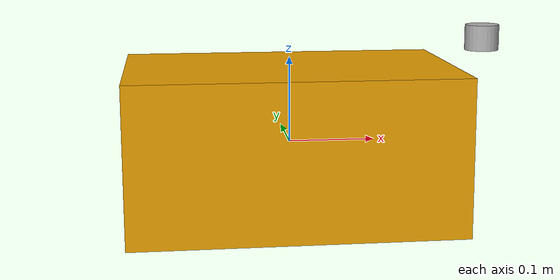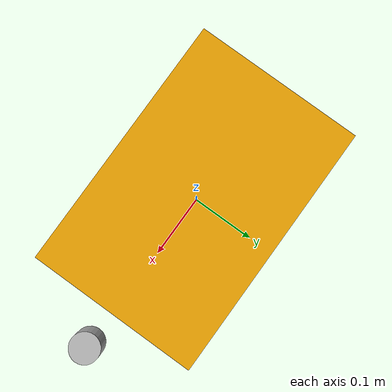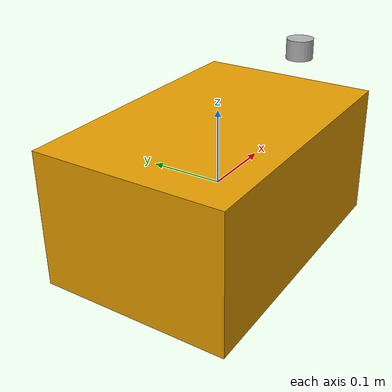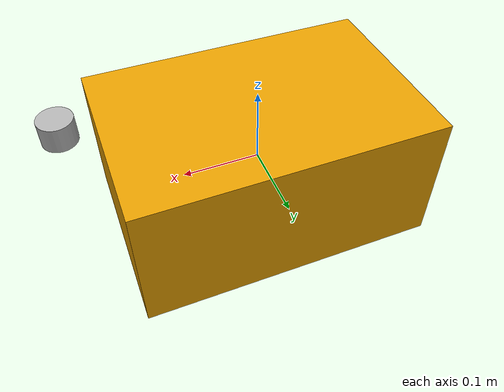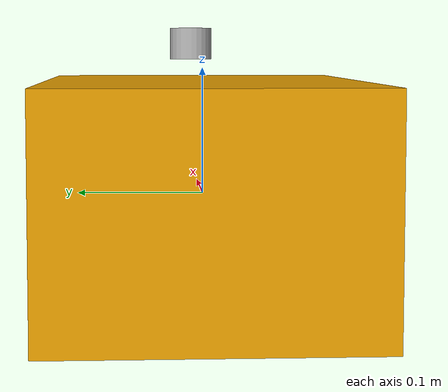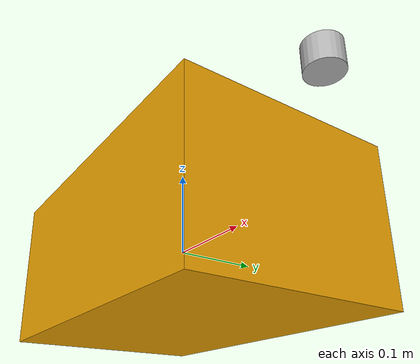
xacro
<?xml version="1.0"?>

<robot name="autocar_wl_v1"
        xmlns:xacro="http://ros.org/wiki/xacro">

        <xacro:include filename="$(find autocar_description)/urdf/wl_rccar_v1.xacro" />

        <link name="laser_link">
                <visual>
                        <origin xyz="0.0 0.0 0.0" />
                        <geometry>
                                <cylinder length="0.03" radius="0.02" />
                        </geometry>
                </visual>
        </link>

        <joint name="base_laser_joint" type="fixed">
                <parent link="base_link" />
                <child link="laser_link" />
                <origin xyz="0.23 0.0 0.12" rpy="0 0 0" />
        </joint>

</robot>

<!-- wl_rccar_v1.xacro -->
<robot name="autocar_wl_v1"
        xmlns:xacro="http://ros.org/wiki/xacro">

        <xacro:arg name="robot_namespace" default="/" />

        <!-- Variables -->
        <xacro:property name="M_PI" value="3.14159"/>

        <!-- Vehicle Geometries -->
        <xacro:property name="base_x_size" value="0.38" />
        <xacro:property name="base_y_size" value="0.25" />
        <xacro:property name="base_z_size" value="0.18" />

        <xacro:property name="wheelbase" value="0.29" />
        <xacro:property name="track" value="0.21" />
        <xacro:property name="wheel_vertical_offset" value="-0.0702" />

        <xacro:property name="wheel_length" value="0.04" />
        <xacro:property name="wheel_radius" value="0.04" />

        <!-- Base link -->
        <link name="base_link">
                <visual>
                        <origin xyz="0 0 0" rpy="0 0 0" />
                        <geometry>
                                <box size="${base_x_size} ${base_y_size} ${base_z_size}" />
                        </geometry>
                </visual>
                <collision>
                        <origin xyz="0 0 0.008" rpy="0 0 0" />
                        <geometry>
                                <box size="${base_x_size} ${base_y_size} ${base_z_size}"/>
                        </geometry>
                </collision>
        </link>

        <link name="base_footprint"/>

        <joint name="base_footprint_joint" type="fixed">
                <origin xyz="0 0 ${wheel_vertical_offset - wheel_radius}" rpy="0 0 0" />
                <parent link="base_link" />
                <child link="base_footprint" />
        </joint>

        <link name="inertial_link">
                <inertial>
                        <mass value="40" />
                        <origin xyz="0.0 0.0 0.0" />
                        <inertia ixx="2.288641" ixy="0" ixz="0" iyy="5.103976" iyz="0" izz="3.431465" />
                </inertial>
        </link>

        <joint name="inertial_joint" type="fixed">
                <origin xyz="0 0 0" rpy="0 0 0" />
                <parent link="base_link" />
                <child link="inertial_link" />
        </joint>

        <!-- Wheels -->
        <xacro:macro name="wl_wheel" params="wheel_prefix *joint_pose">
                <link name="${wheel_prefix}_wheel_link">
                        <inertial>
                                <mass value="3" />
                                <origin xyz="0 0 0" />
                                <inertia ixx="0.7171" ixy="0" ixz="0" iyy="0.1361" iyz="0" izz="0.7171" />
                        </inertial>
                        <visual>
                                <origin xyz="0 0 0" rpy="0 0 0" />
                                <geometry>
                                        <cylinder length="${wheel_length}" radius="${wheel_radius}" />
                                </geometry>
                        </visual>
                        <collision>
                                <origin xyz="0 0 0" rpy="${M_PI/2} 0 0" />
                                <geometry>
                                        <cylinder length="${wheel_length}" radius="${wheel_radius}" />
                                </geometry>
                        </collision>
                </link>

                <joint name="${wheel_prefix}_wheel_joint" type="continuous">
                        <parent link="base_link"/>
                        <child link="${wheel_prefix}_wheel_link"/>
                        <axis xyz="0 -1 0" rpy="0 0 0" />
                        <xacro:insert_block name="joint_pose"/>
                </joint>
        </xacro:macro>

        <xacro:wl_wheel wheel_prefix="front_right">
                <joint_pose>
                        <origin xyz="${wheelbase} -${track/2} ${wheel_vertical_offset}" rpy="0 0 0" />
                </joint_pose>
        </xacro:wl_wheel>
        <xacro:wl_wheel wheel_prefix="front_left">
                <joint_pose>
                        <origin xyz="${wheelbase} ${track/2} ${wheel_vertical_offset}" rpy="0 0 0" />
                </joint_pose>
        </xacro:wl_wheel>
        <xacro:wl_wheel wheel_prefix="rear_left">
                <joint_pose>
                        <origin xyz="0 ${track/2} ${wheel_vertical_offset}" rpy="0 0 0" />
                </joint_pose>
        </xacro:wl_wheel>
        <xacro:wl_wheel wheel_prefix="rear_right">
                <joint_pose>
                        <origin xyz="0 -${track/2} ${wheel_vertical_offset}" rpy="3.14 0 0" />
                </joint_pose>
        </xacro:wl_wheel>

</robot>
